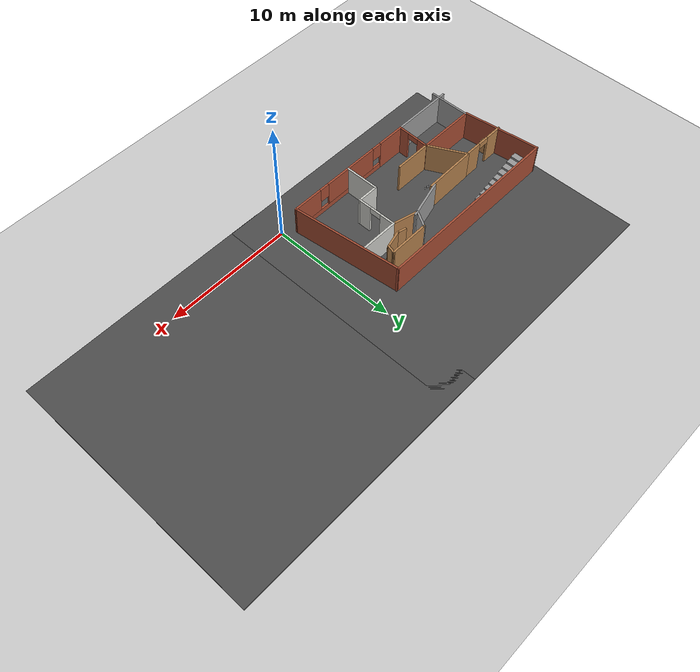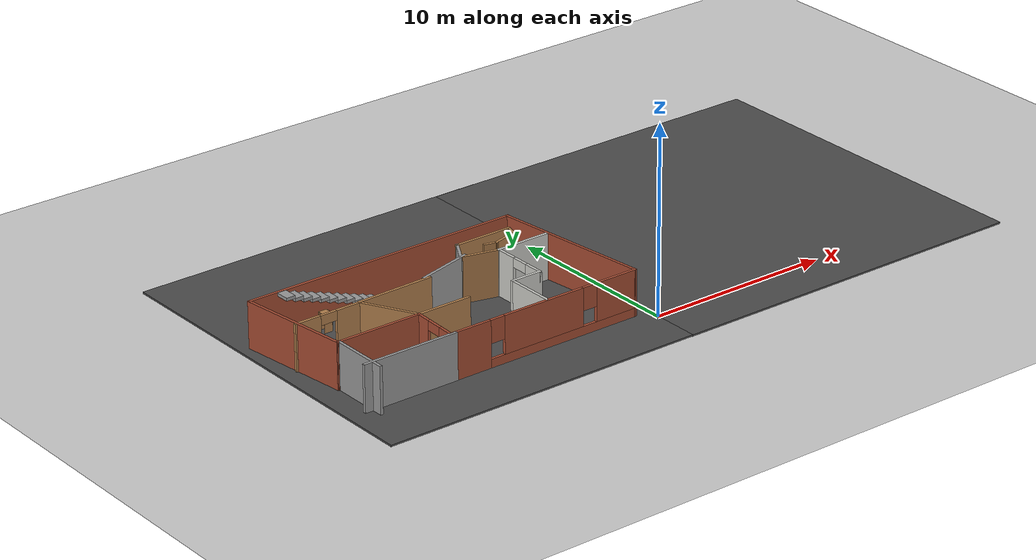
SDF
<sdf version="1.7">
 <world name="default">
  <model name="ground_plane">
   <static>1</static>
   <link name="link">
    <collision name="collision">
     <geometry><plane><normal>0 0 1</normal><size>100 100</size></plane></geometry>
     <surface><friction><ode><mu>100</mu><mu2>50</mu2></ode></friction></surface>
    </collision>
    <visual name="visual">
     <cast_shadows>0</cast_shadows>
     <geometry><plane><normal>0 0 1</normal><size>100 100</size></plane></geometry>
     <material>
      <script><uri>file://media/materials/scripts/gazebo.material</uri><name>Gazebo/Grey</name></script>
     </material>
    </visual>
   </link>
  </model>
  <model name="asphalt_plane">
   <static>1</static>
   <link name="link">
    <collision name="collision"><geometry><box><size>20 20 0.1</size></box></geometry></collision>
    <visual name="visual">
     <cast_shadows>0</cast_shadows>
     <geometry><box><size>20 20 0.1</size></box></geometry>
     <material>
      <script>
       <uri>model://asphalt_plane/materials/scripts</uri>
       <uri>model://asphalt_plane/materials/textures</uri>
       <name>vrc/asphalt</name>
      </script>
     </material>
    </visual>
   </link>
   <pose>9.99412 7.45899 0 0 -0 0</pose>
  </model>
  <model name="asphalt_plane_clone">
   <static>1</static>
   <link name="link">
    <collision name="collision"><geometry><box><size>20 20 0.1</size></box></geometry></collision>
    <visual name="visual">
     <cast_shadows>0</cast_shadows>
     <geometry><box><size>20 20 0.1</size></box></geometry>
     <material>
      <script>
       <uri>model://asphalt_plane/materials/scripts</uri>
       <uri>model://asphalt_plane/materials/textures</uri>
       <name>vrc/asphalt</name>
      </script>
     </material>
    </visual>
   </link>
   <pose>-7.54692 7.47993 0 0 -0 0</pose>
  </model>
  <model name="wonky_house">
   <pose>-8.51081 4.66291 0 0 -0 0</pose>
   <link name="Stairs_0">
    <visual name="Stairs_0_Visual_0">
     <pose>0.105992 4.11829 0.083333 0 -0 -1.5708</pose>
     <geometry><box><size>0.71857 0.484275 0.166667</size></box></geometry>
     <material>
      <script><uri>file://media/materials/scripts/gazebo.material</uri><name>Gazebo/Grey</name></script>
      <ambient>1 1 1 1</ambient>
     </material>
     <meta><layer>0</layer></meta>
    </visual>
    <collision name="Stairs_0_Collision_0">
     <geometry><box><size>0.71857 0.484275 0.166667</size></box></geometry>
     <pose>0.105992 4.11829 0.083333 0 -0 -1.5708</pose>
    </collision>
    <visual name="Stairs_0_Visual_1">
     <pose>-0.378284 4.11828 0.25 0 -0 -1.5708</pose>
     <geometry><box><size>0.71857 0.484275 0.166667</size></box></geometry>
     <material>
      <script><uri>file://media/materials/scripts/gazebo.material</uri><name>Gazebo/Grey</name></script>
      <ambient>1 1 1 1</ambient>
     </material>
     <meta><layer>0</layer></meta>
    </visual>
    <collision name="Stairs_0_Collision_1">
     <geometry><box><size>0.71857 0.484275 0.166667</size></box></geometry>
     <pose>-0.378284 4.11828 0.25 0 -0 -1.5708</pose>
    </collision>
    <visual name="Stairs_0_Visual_2">
     <pose>-0.862558 4.11828 0.416667 0 -0 -1.5708</pose>
     <geometry><box><size>0.71857 0.484275 0.166667</size></box></geometry>
     <material>
      <script><uri>file://media/materials/scripts/gazebo.material</uri><name>Gazebo/Grey</name></script>
      <ambient>1 1 1 1</ambient>
     </material>
     <meta><layer>0</layer></meta>
    </visual>
    <collision name="Stairs_0_Collision_2">
     <geometry><box><size>0.71857 0.484275 0.166667</size></box></geometry>
     <pose>-0.862558 4.11828 0.416667 0 -0 -1.5708</pose>
    </collision>
    <visual name="Stairs_0_Visual_3">
     <pose>-1.34683 4.11829 0.583333 0 -0 -1.5708</pose>
     <geometry><box><size>0.71857 0.484275 0.166667</size></box></geometry>
     <material>
      <script><uri>file://media/materials/scripts/gazebo.material</uri><name>Gazebo/Grey</name></script>
      <ambient>1 1 1 1</ambient>
     </material>
     <meta><layer>0</layer></meta>
    </visual>
    <collision name="Stairs_0_Collision_3">
     <geometry><box><size>0.71857 0.484275 0.166667</size></box></geometry>
     <pose>-1.34683 4.11829 0.583333 0 -0 -1.5708</pose>
    </collision>
    <visual name="Stairs_0_Visual_4">
     <pose>-1.83111 4.11829 0.75 0 -0 -1.5708</pose>
     <geometry><box><size>0.71857 0.484275 0.166667</size></box></geometry>
     <material>
      <script><uri>file://media/materials/scripts/gazebo.material</uri><name>Gazebo/Grey</name></script>
      <ambient>1 1 1 1</ambient>
     </material>
     <meta><layer>0</layer></meta>
    </visual>
    <collision name="Stairs_0_Collision_4">
     <geometry><box><size>0.71857 0.484275 0.166667</size></box></geometry>
     <pose>-1.83111 4.11829 0.75 0 -0 -1.5708</pose>
    </collision>
    <visual name="Stairs_0_Visual_5">
     <pose>-2.31538 4.11829 0.916667 0 -0 -1.5708</pose>
     <geometry><box><size>0.71857 0.484275 0.166667</size></box></geometry>
     <material>
      <script><uri>file://media/materials/scripts/gazebo.material</uri><name>Gazebo/Grey</name></script>
      <ambient>1 1 1 1</ambient>
     </material>
     <meta><layer>0</layer></meta>
    </visual>
    <collision name="Stairs_0_Collision_5">
     <geometry><box><size>0.71857 0.484275 0.166667</size></box></geometry>
     <pose>-2.31538 4.11829 0.916667 0 -0 -1.5708</pose>
    </collision>
    <visual name="Stairs_0_Visual_6">
     <pose>-2.79966 4.11829 1.08333 0 -0 -1.5708</pose>
     <geometry><box><size>0.71857 0.484275 0.166667</size></box></geometry>
     <material>
      <script><uri>file://media/materials/scripts/gazebo.material</uri><name>Gazebo/Grey</name></script>
      <ambient>1 1 1 1</ambient>
     </material>
     <meta><layer>0</layer></meta>
    </visual>
    <collision name="Stairs_0_Collision_6">
     <geometry><box><size>0.71857 0.484275 0.166667</size></box></geometry>
     <pose>-2.79966 4.11829 1.08333 0 -0 -1.5708</pose>
    </collision>
    <visual name="Stairs_0_Visual_7">
     <pose>-3.28394 4.11829 1.25 0 -0 -1.5708</pose>
     <geometry><box><size>0.71857 0.484275 0.166667</size></box></geometry>
     <material>
      <script><uri>file://media/materials/scripts/gazebo.material</uri><name>Gazebo/Grey</name></script>
      <ambient>1 1 1 1</ambient>
     </material>
     <meta><layer>0</layer></meta>
    </visual>
    <collision name="Stairs_0_Collision_7">
     <geometry><box><size>0.71857 0.484275 0.166667</size></box></geometry>
     <pose>-3.28394 4.11829 1.25 0 -0 -1.5708</pose>
    </collision>
    <visual name="Stairs_0_Visual_8">
     <pose>-3.76821 4.11829 1.41667 0 -0 -1.5708</pose>
     <geometry><box><size>0.71857 0.484275 0.166667</size></box></geometry>
     <material>
      <script><uri>file://media/materials/scripts/gazebo.material</uri><name>Gazebo/Grey</name></script>
      <ambient>1 1 1 1</ambient>
     </material>
     <meta><layer>0</layer></meta>
    </visual>
    <collision name="Stairs_0_Collision_8">
     <geometry><box><size>0.71857 0.484275 0.166667</size></box></geometry>
     <pose>-3.76821 4.11829 1.41667 0 -0 -1.5708</pose>
    </collision>
    <visual name="Stairs_0_Visual_9">
     <pose>-4.25249 4.11829 1.58333 0 -0 -1.5708</pose>
     <geometry><box><size>0.71857 0.484275 0.166667</size></box></geometry>
     <material>
      <script><uri>file://media/materials/scripts/gazebo.material</uri><name>Gazebo/Grey</name></script>
      <ambient>1 1 1 1</ambient>
     </material>
     <meta><layer>0</layer></meta>
    </visual>
    <collision name="Stairs_0_Collision_9">
     <geometry><box><size>0.71857 0.484275 0.166667</size></box></geometry>
     <pose>-4.25249 4.11829 1.58333 0 -0 -1.5708</pose>
    </collision>
    <visual name="Stairs_0_Visual_10">
     <pose>-4.73676 4.11829 1.75 0 -0 -1.5708</pose>
     <geometry><box><size>0.71857 0.484275 0.166667</size></box></geometry>
     <material>
      <script><uri>file://media/materials/scripts/gazebo.material</uri><name>Gazebo/Grey</name></script>
      <ambient>1 1 1 1</ambient>
     </material>
     <meta><layer>0</layer></meta>
    </visual>
    <collision name="Stairs_0_Collision_10">
     <geometry><box><size>0.71857 0.484275 0.166667</size></box></geometry>
     <pose>-4.73676 4.11829 1.75 0 -0 -1.5708</pose>
    </collision>
    <visual name="Stairs_0_Visual_11">
     <pose>-5.22104 4.11829 1.91667 0 -0 -1.5708</pose>
     <geometry><box><size>0.71857 0.484275 0.166667</size></box></geometry>
     <material>
      <script><uri>file://media/materials/scripts/gazebo.material</uri><name>Gazebo/Grey</name></script>
      <ambient>1 1 1 1</ambient>
     </material>
     <meta><layer>0</layer></meta>
    </visual>
    <collision name="Stairs_0_Collision_11">
     <geometry><box><size>0.71857 0.484275 0.166667</size></box></geometry>
     <pose>-5.22104 4.11829 1.91667 0 -0 -1.5708</pose>
    </collision>
    <visual name="Stairs_0_Visual_12">
     <pose>-5.70531 4.11829 2.08333 0 -0 -1.5708</pose>
     <geometry><box><size>0.71857 0.484275 0.166667</size></box></geometry>
     <material>
      <script><uri>file://media/materials/scripts/gazebo.material</uri><name>Gazebo/Grey</name></script>
      <ambient>1 1 1 1</ambient>
     </material>
     <meta><layer>0</layer></meta>
    </visual>
    <collision name="Stairs_0_Collision_12">
     <geometry><box><size>0.71857 0.484275 0.166667</size></box></geometry>
     <pose>-5.70531 4.11829 2.08333 0 -0 -1.5708</pose>
    </collision>
    <visual name="Stairs_0_Visual_13">
     <pose>-6.18959 4.11829 2.25 0 -0 -1.5708</pose>
     <geometry><box><size>0.71857 0.484275 0.166667</size></box></geometry>
     <material>
      <script><uri>file://media/materials/scripts/gazebo.material</uri><name>Gazebo/Grey</name></script>
      <ambient>1 1 1 1</ambient>
     </material>
     <meta><layer>0</layer></meta>
    </visual>
    <collision name="Stairs_0_Collision_13">
     <geometry><box><size>0.71857 0.484275 0.166667</size></box></geometry>
     <pose>-6.18959 4.11829 2.25 0 -0 -1.5708</pose>
    </collision>
    <visual name="Stairs_0_Visual_14">
     <pose>-6.67386 4.11829 2.41667 0 -0 -1.5708</pose>
     <geometry><box><size>0.71857 0.484275 0.166667</size></box></geometry>
     <material>
      <script><uri>file://media/materials/scripts/gazebo.material</uri><name>Gazebo/Grey</name></script>
      <ambient>1 1 1 1</ambient>
     </material>
     <meta><layer>0</layer></meta>
    </visual>
    <collision name="Stairs_0_Collision_14">
     <geometry><box><size>0.71857 0.484275 0.166667</size></box></geometry>
     <pose>-6.67386 4.11829 2.41667 0 -0 -1.5708</pose>
    </collision>
   </link>
   <link name="Wall_16">
    <collision name="Wall_16_Collision">
     <geometry><box><size>15.25 0.15 2.5</size></box></geometry>
     <pose>0 0 1.25 0 -0 0</pose>
    </collision>
    <visual name="Wall_16_Visual">
     <pose>0 0 1.25 0 -0 0</pose>
     <geometry><box><size>15.25 0.15 2.5</size></box></geometry>
     <material>
      <script><uri>file://media/materials/scripts/gazebo.material</uri><name>Gazebo/Bricks</name></script>
      <ambient>1 1 1 1</ambient>
     </material>
     <meta><layer>0</layer></meta>
    </visual>
    <pose>-0.850794 4.57949 0 0 -0 3.14159</pose>
   </link>
   <link name="Wall_17">
    <collision name="Wall_17_Collision">
     <geometry><box><size>6.16543 0.15 2.5</size></box></geometry>
     <pose>0 0 1.25 0 -0 0</pose>
    </collision>
    <visual name="Wall_17_Visual">
     <pose>0 0 1.25 0 -0 0</pose>
     <geometry><box><size>6.16543 0.15 2.5</size></box></geometry>
     <material>
      <script><uri>file://media/materials/scripts/gazebo.material</uri><name>Gazebo/Bricks</name></script>
      <ambient>1 1 1 1</ambient>
     </material>
     <meta><layer>0</layer></meta>
    </visual>
    <pose>-8.06829 1.59329 0 0 -0 -1.45112</pose>
   </link>
   <link name="Wall_18">
    <collision name="Wall_18_Collision">
     <geometry><box><size>4.75 0.15 2.5</size></box></geometry>
     <pose>0 0 1.25 0 -0 0</pose>
    </collision>
    <visual name="Wall_18_Visual">
     <pose>0 0 1.25 0 -0 0</pose>
     <geometry><box><size>4.75 0.15 2.5</size></box></geometry>
     <material>
      <script><uri>file://media/materials/scripts/gazebo.material</uri><name>Gazebo/Bricks</name></script>
      <ambient>1 1 1 1</ambient>
     </material>
     <meta><layer>0</layer></meta>
    </visual>
    <pose>-5.40919 -1.39291 0 0 -0 0</pose>
   </link>
   <link name="Wall_21">
    <collision name="Wall_21_Collision">
     <geometry><box><size>3.2014 0.15 2.5</size></box></geometry>
     <pose>0 0 1.25 0 -0 0</pose>
    </collision>
    <visual name="Wall_21_Visual">
     <pose>0 0 1.25 0 -0 0</pose>
     <geometry><box><size>3.2014 0.15 2.5</size></box></geometry>
     <material>
      <script><uri>file://media/materials/scripts/gazebo.material</uri><name>Gazebo/Wood</name></script>
      <ambient>1 1 1 1</ambient>
     </material>
     <meta><layer>0</layer></meta>
    </visual>
    <pose>-3.81409 -0.039815 0 0 -0 2.05107</pose>
   </link>
   <link name="Wall_22">
    <pose>-6.319 1.31328 0 0 -0 3.14159</pose>
    <visual name="Wall_22_Visual_0">
     <pose>-1.16791 0 1.25 0 -0 0</pose>
     <geometry><box><size>1.41417 0.15 2.5</size></box></geometry>
     <material>
      <script><uri>file://media/materials/scripts/gazebo.material</uri><name>Gazebo/Wood</name></script>
      <ambient>1 1 1 1</ambient>
     </material>
     <meta><layer>0</layer></meta>
    </visual>
    <collision name="Wall_22_Collision_0">
     <geometry><box><size>1.41417 0.15 2.5</size></box></geometry>
     <pose>-1.16791 0 1.25 0 -0 0</pose>
    </collision>
    <visual name="Wall_22_Visual_1">
     <pose>1.15709 0 1.25 0 -0 0</pose>
     <geometry><box><size>1.43583 0.15 2.5</size></box></geometry>
     <material>
      <script><uri>file://media/materials/scripts/gazebo.material</uri><name>Gazebo/Wood</name></script>
      <ambient>1 1 1 1</ambient>
     </material>
     <meta><layer>0</layer></meta>
    </visual>
    <collision name="Wall_22_Collision_1">
     <geometry><box><size>1.43583 0.15 2.5</size></box></geometry>
     <pose>1.15709 0 1.25 0 -0 0</pose>
    </collision>
    <visual name="Wall_22_Visual_2">
     <pose>-0.010826 0 2.25 0 -0 0</pose>
     <geometry><box><size>0.9 0.15 0.5</size></box></geometry>
     <material>
      <script><uri>file://media/materials/scripts/gazebo.material</uri><name>Gazebo/Wood</name></script>
      <ambient>1 1 1 1</ambient>
     </material>
     <meta><layer>0</layer></meta>
    </visual>
    <collision name="Wall_22_Collision_2">
     <geometry><box><size>0.9 0.15 0.5</size></box></geometry>
     <pose>-0.010826 0 2.25 0 -0 0</pose>
    </collision>
   </link>
   <link name="Wall_24">
    <pose>-3.15919 -2.66791 0 0 -0 1.5316</pose>
    <visual name="Wall_24_Visual_0">
     <pose>-0.891327 0 1.25 0 -0 0</pose>
     <geometry><box><size>0.919306 0.15 2.5</size></box></geometry>
     <material>
      <script><uri>file://media/materials/scripts/gazebo.material</uri><name>Gazebo/Bricks</name></script>
      <ambient>1 1 1 1</ambient>
     </material>
     <meta><layer>0</layer></meta>
    </visual>
    <collision name="Wall_24_Collision_0">
     <geometry><box><size>0.919306 0.15 2.5</size></box></geometry>
     <pose>-0.891327 0 1.25 0 -0 0</pose>
    </collision>
    <visual name="Wall_24_Visual_1">
     <pose>0.909653 0 1.25 0 -0 0</pose>
     <geometry><box><size>0.882654 0.15 2.5</size></box></geometry>
     <material>
      <script><uri>file://media/materials/scripts/gazebo.material</uri><name>Gazebo/Bricks</name></script>
      <ambient>1 1 1 1</ambient>
     </material>
     <meta><layer>0</layer></meta>
    </visual>
    <collision name="Wall_24_Collision_1">
     <geometry><box><size>0.882654 0.15 2.5</size></box></geometry>
     <pose>0.909653 0 1.25 0 -0 0</pose>
    </collision>
    <visual name="Wall_24_Visual_2">
     <pose>0.018326 0 2.25 0 -0 0</pose>
     <geometry><box><size>0.9 0.15 0.5</size></box></geometry>
     <material>
      <script><uri>file://media/materials/scripts/gazebo.material</uri><name>Gazebo/Bricks</name></script>
      <ambient>1 1 1 1</ambient>
     </material>
     <meta><layer>0</layer></meta>
    </visual>
    <collision name="Wall_24_Collision_2">
     <geometry><box><size>0.9 0.15 0.5</size></box></geometry>
     <pose>0.018326 0 2.25 0 -0 0</pose>
    </collision>
   </link>
   <link name="Wall_27">
    <collision name="Wall_27_Collision">
     <geometry><box><size>8.72722 0.15 2.5</size></box></geometry>
     <pose>0 0 1.25 0 -0 0</pose>
    </collision>
    <visual name="Wall_27_Visual">
     <pose>0 0 1.25 0 -0 0</pose>
     <geometry><box><size>8.72722 0.15 2.5</size></box></geometry>
     <material>
      <script><uri>file://media/materials/scripts/gazebo.material</uri><name>Gazebo/Bricks</name></script>
      <ambient>1 1 1 1</ambient>
     </material>
     <meta><layer>0</layer></meta>
    </visual>
    <pose>7.15671 0.318291 0 0 -0 1.68392</pose>
   </link>
   <link name="Wall_29">
    <collision name="Wall_29_Collision">
     <geometry><box><size>3 0.15 2.5</size></box></geometry>
     <pose>0 0 1.25 0 -0 0</pose>
    </collision>
    <visual name="Wall_29_Visual">
     <pose>0 0 1.25 0 -0 0</pose>
     <geometry><box><size>3 0.15 2.5</size></box></geometry>
     <material>
      <script><uri>file://media/materials/scripts/gazebo.material</uri><name>Gazebo/CeilingTiled</name></script>
      <ambient>1 1 1 1</ambient>
     </material>
     <meta><layer>0</layer></meta>
    </visual>
    <pose>5.42135 1.78856 0 0 -0 3.14159</pose>
   </link>
   <link name="Wall_30">
    <pose>4.02295 0.238559 0 0 -0 -1.5708</pose>
    <visual name="Wall_30_Visual_0">
     <pose>-1.00119 0 1.25 0 -0 0</pose>
     <geometry><box><size>1.24761 0.15 2.5</size></box></geometry>
     <material>
      <script><uri>file://media/materials/scripts/gazebo.material</uri><name>Gazebo/CeilingTiled</name></script>
      <ambient>1 1 1 1</ambient>
     </material>
     <meta><layer>0</layer></meta>
    </visual>
    <collision name="Wall_30_Collision_0">
     <geometry><box><size>1.24761 0.15 2.5</size></box></geometry>
     <pose>-1.00119 0 1.25 0 -0 0</pose>
    </collision>
    <visual name="Wall_30_Visual_1">
     <pose>1.07381 0 1.25 0 -0 0</pose>
     <geometry><box><size>1.10239 0.15 2.5</size></box></geometry>
     <material>
      <script><uri>file://media/materials/scripts/gazebo.material</uri><name>Gazebo/CeilingTiled</name></script>
      <ambient>1 1 1 1</ambient>
     </material>
     <meta><layer>0</layer></meta>
    </visual>
    <collision name="Wall_30_Collision_1">
     <geometry><box><size>1.10239 0.15 2.5</size></box></geometry>
     <pose>1.07381 0 1.25 0 -0 0</pose>
    </collision>
    <visual name="Wall_30_Visual_2">
     <pose>0.072612 0 2.25 0 -0 0</pose>
     <geometry><box><size>0.9 0.15 0.5</size></box></geometry>
     <material>
      <script><uri>file://media/materials/scripts/gazebo.material</uri><name>Gazebo/CeilingTiled</name></script>
      <ambient>1 1 1 1</ambient>
     </material>
     <meta><layer>0</layer></meta>
    </visual>
    <collision name="Wall_30_Collision_2">
     <geometry><box><size>0.9 0.15 0.5</size></box></geometry>
     <pose>0.072612 0 2.25 0 -0 0</pose>
    </collision>
   </link>
   <link name="Wall_32">
    <collision name="Wall_32_Collision">
     <geometry><box><size>2.11559 0.15 2.5</size></box></geometry>
     <pose>0 0 1.25 0 -0 0</pose>
    </collision>
    <visual name="Wall_32_Visual">
     <pose>0 0 1.25 0 -0 0</pose>
     <geometry><box><size>2.11559 0.15 2.5</size></box></geometry>
     <material>
      <script><uri>file://media/materials/scripts/gazebo.material</uri><name>Gazebo/Wood</name></script>
      <ambient>1 1 1 1</ambient>
     </material>
     <meta><layer>0</layer></meta>
    </visual>
    <pose>3.04309 2.02766 0 0 -0 2.89584</pose>
   </link>
   <link name="Wall_34">
    <collision name="Wall_34_Collision">
     <geometry><box><size>4.28757 0.15 2.5</size></box></geometry>
     <pose>0 0 1.25 0 -0 0</pose>
    </collision>
    <visual name="Wall_34_Visual">
     <pose>0 0 1.25 0 -0 0</pose>
     <geometry><box><size>4.28757 0.15 2.5</size></box></geometry>
     <material>
      <script><uri>file://media/materials/scripts/gazebo.material</uri><name>Gazebo/Wood</name></script>
      <ambient>1 1 1 1</ambient>
     </material>
     <meta><layer>0</layer></meta>
    </visual>
    <pose>-2.45075 1.38707 0 0 -0 -3.11878</pose>
   </link>
   <link name="Wall_36">
    <collision name="Wall_36_Collision">
     <geometry><box><size>3 0.15 2.5</size></box></geometry>
     <pose>0 0 1.25 0 -0 0</pose>
    </collision>
    <visual name="Wall_36_Visual">
     <pose>0 0 1.25 0 -0 0</pose>
     <geometry><box><size>3 0.15 2.5</size></box></geometry>
     <material>
      <script><uri>file://media/materials/scripts/gazebo.material</uri><name>Gazebo/Wood</name></script>
      <ambient>1 1 1 1</ambient>
     </material>
     <meta><layer>0</layer></meta>
    </visual>
    <pose>-1.68419 -1.39291 0 0 -0 0</pose>
   </link>
   <link name="Wall_38">
    <collision name="Wall_38_Collision">
     <geometry><box><size>1.75 0.15 2.5</size></box></geometry>
     <pose>0 0 1.25 0 -0 0</pose>
    </collision>
    <visual name="Wall_38_Visual">
     <pose>0 0 1.25 0 -0 0</pose>
     <geometry><box><size>1.75 0.15 2.5</size></box></geometry>
     <material>
      <script><uri>file://media/materials/scripts/gazebo.material</uri><name>Gazebo/CeilingTiled</name></script>
      <ambient>1 1 1 1</ambient>
     </material>
     <meta><layer>0</layer></meta>
    </visual>
    <pose>3.22295 -1.31144 0 0 -0 3.14159</pose>
   </link>
   <link name="Wall_39">
    <collision name="Wall_39_Collision">
     <geometry><box><size>2.75 0.15 2.5</size></box></geometry>
     <pose>0 0 1.25 0 -0 0</pose>
    </collision>
    <visual name="Wall_39_Visual">
     <pose>0 0 1.25 0 -0 0</pose>
     <geometry><box><size>2.75 0.15 2.5</size></box></geometry>
     <material>
      <script><uri>file://media/materials/scripts/gazebo.material</uri><name>Gazebo/CeilingTiled</name></script>
      <ambient>1 1 1 1</ambient>
     </material>
     <meta><layer>0</layer></meta>
    </visual>
    <pose>2.42295 -2.61144 0 0 -0 -1.5708</pose>
   </link>
   <link name="Wall_41">
    <collision name="Wall_41_Collision">
     <geometry><box><size>1.5 0.15 2.5</size></box></geometry>
     <pose>0 0 1.25 0 -0 0</pose>
    </collision>
    <visual name="Wall_41_Visual">
     <pose>0 0 1.25 0 -0 0</pose>
     <geometry><box><size>1.5 0.15 2.5</size></box></geometry>
     <material>
      <script><uri>file://media/materials/scripts/gazebo.material</uri><name>Gazebo/Grey</name></script>
      <ambient>1 1 1 1</ambient>
     </material>
     <meta><layer>0</layer></meta>
    </visual>
    <pose>2.42732 2.85133 0 0 -0 1.0472</pose>
   </link>
   <link name="Wall_42">
    <collision name="Wall_42_Collision">
     <geometry><box><size>3.25 0.15 2.5</size></box></geometry>
     <pose>0 0 1.25 0 -0 0</pose>
    </collision>
    <visual name="Wall_42_Visual">
     <pose>0 0 1.25 0 -0 0</pose>
     <geometry><box><size>3.25 0.15 2.5</size></box></geometry>
     <material>
      <script><uri>file://media/materials/scripts/gazebo.material</uri><name>Gazebo/Wood</name></script>
      <ambient>1 1 1 1</ambient>
     </material>
     <meta><layer>0</layer></meta>
    </visual>
    <pose>4.31482 3.43589 0 0 -0 0</pose>
   </link>
   <link name="Wall_43">
    <collision name="Wall_43_Collision">
     <geometry><box><size>0.75 0.15 2.5</size></box></geometry>
     <pose>0 0 1.25 0 -0 0</pose>
    </collision>
    <visual name="Wall_43_Visual">
     <pose>0 0 1.25 0 -0 0</pose>
     <geometry><box><size>0.75 0.15 2.5</size></box></geometry>
     <material>
      <script><uri>file://media/materials/scripts/gazebo.material</uri><name>Gazebo/Wood</name></script>
      <ambient>1 1 1 1</ambient>
     </material>
     <meta><layer>0</layer></meta>
    </visual>
    <pose>5.78718 3.14612 0 0 -0 -1.8326</pose>
   </link>
   <link name="Wall_44">
    <collision name="Wall_44_Collision">
     <geometry><box><size>1.5 0.15 2.5</size></box></geometry>
     <pose>0 0 1.25 0 -0 0</pose>
    </collision>
    <visual name="Wall_44_Visual">
     <pose>0 0 1.25 0 -0 0</pose>
     <geometry><box><size>1.5 0.15 2.5</size></box></geometry>
     <material>
      <script><uri>file://media/materials/scripts/gazebo.material</uri><name>Gazebo/Wood</name></script>
      <ambient>1 1 1 1</ambient>
     </material>
     <meta><layer>0</layer></meta>
    </visual>
    <pose>5.05753 2.68163 0 0 -0 -2.87979</pose>
   </link>
   <link name="Wall_45">
    <collision name="Wall_45_Collision">
     <geometry><box><size>0.75 0.15 2.5</size></box></geometry>
     <pose>0 0 1.25 0 -0 0</pose>
    </collision>
    <visual name="Wall_45_Visual">
     <pose>0 0 1.25 0 -0 0</pose>
     <geometry><box><size>0.75 0.15 2.5</size></box></geometry>
     <material>
      <script><uri>file://media/materials/scripts/gazebo.material</uri><name>Gazebo/Wood</name></script>
      <ambient>1 1 1 1</ambient>
     </material>
     <meta><layer>0</layer></meta>
    </visual>
    <pose>4.11575 2.58458 0 0 -0 2.87979</pose>
   </link>
   <link name="Wall_8">
    <pose>2.21581 -3.94291 0 0 -0 0</pose>
    <visual name="Wall_8_Visual_0">
     <pose>-4.33496 0 1.25 0 -0 0</pose>
     <geometry><box><size>2.33007 0.15 2.5</size></box></geometry>
     <material>
      <script><uri>file://media/materials/scripts/gazebo.material</uri><name>Gazebo/Bricks</name></script>
      <ambient>1 1 1 1</ambient>
     </material>
     <meta><layer>0</layer></meta>
    </visual>
    <collision name="Wall_8_Collision_0">
     <geometry><box><size>2.33007 0.15 2.5</size></box></geometry>
     <pose>-4.33496 0 1.25 0 -0 0</pose>
    </collision>
    <visual name="Wall_8_Visual_1">
     <pose>1.16504 0 0.25 0 -0 0</pose>
     <geometry><box><size>8.66993 0.15 0.5</size></box></geometry>
     <material>
      <script><uri>file://media/materials/scripts/gazebo.material</uri><name>Gazebo/Bricks</name></script>
      <ambient>1 1 1 1</ambient>
     </material>
     <meta><layer>0</layer></meta>
    </visual>
    <collision name="Wall_8_Collision_1">
     <geometry><box><size>8.66993 0.15 0.5</size></box></geometry>
     <pose>1.16504 0 0.25 0 -0 0</pose>
    </collision>
    <visual name="Wall_8_Visual_2">
     <pose>-0.056709 0 1.5 0 -0 0</pose>
     <geometry><box><size>4.62644 0.15 2</size></box></geometry>
     <material>
      <script><uri>file://media/materials/scripts/gazebo.material</uri><name>Gazebo/Bricks</name></script>
      <ambient>1 1 1 1</ambient>
     </material>
     <meta><layer>0</layer></meta>
    </visual>
    <collision name="Wall_8_Collision_2">
     <geometry><box><size>4.62644 0.15 2</size></box></geometry>
     <pose>-0.056709 0 1.5 0 -0 0</pose>
    </collision>
    <visual name="Wall_8_Visual_3">
     <pose>4.27826 0 1.5 0 -0 0</pose>
     <geometry><box><size>2.44349 0.15 2</size></box></geometry>
     <material>
      <script><uri>file://media/materials/scripts/gazebo.material</uri><name>Gazebo/Bricks</name></script>
      <ambient>1 1 1 1</ambient>
     </material>
     <meta><layer>0</layer></meta>
    </visual>
    <collision name="Wall_8_Collision_3">
     <geometry><box><size>2.44349 0.15 2</size></box></geometry>
     <pose>4.27826 0 1.5 0 -0 0</pose>
    </collision>
    <visual name="Wall_8_Visual_4">
     <pose>-2.76993 0 1.9 0 -0 0</pose>
     <geometry><box><size>0.8 0.15 1.2</size></box></geometry>
     <material>
      <script><uri>file://media/materials/scripts/gazebo.material</uri><name>Gazebo/Bricks</name></script>
      <ambient>1 1 1 1</ambient>
     </material>
     <meta><layer>0</layer></meta>
    </visual>
    <collision name="Wall_8_Collision_4">
     <geometry><box><size>0.8 0.15 1.2</size></box></geometry>
     <pose>-2.76993 0 1.9 0 -0 0</pose>
    </collision>
    <visual name="Wall_8_Visual_5">
     <pose>2.65651 0 1.9 0 -0 0</pose>
     <geometry><box><size>0.8 0.15 1.2</size></box></geometry>
     <material>
      <script><uri>file://media/materials/scripts/gazebo.material</uri><name>Gazebo/Bricks</name></script>
      <ambient>1 1 1 1</ambient>
     </material>
     <meta><layer>0</layer></meta>
    </visual>
    <collision name="Wall_8_Collision_5">
     <geometry><box><size>0.8 0.15 1.2</size></box></geometry>
     <pose>2.65651 0 1.9 0 -0 0</pose>
    </collision>
   </link>
   <static>1</static>
  </model>
  <model name="beer">
   <link name="link">
    <pose>0 0 0.115 0 -0 0</pose>
    <inertial>
     <mass>0.39</mass>
     <inertia><ixx>0.00058</ixx><ixy>0</ixy><ixz>0</ixz><iyy>0.00058</iyy><iyz>0</iyz><izz>0.00019</izz></inertia>
    </inertial>
    <collision name="collision">
     <geometry><cylinder><radius>0.055</radius><length>0.23</length></cylinder></geometry>
    </collision>
    <visual name="visual">
     <geometry><cylinder><radius>0.055</radius><length>0.23</length></cylinder></geometry>
     <material>
      <script>
       <uri>model://beer/materials/scripts</uri>
       <uri>model://beer/materials/textures</uri>
       <name>Beer/Diffuse</name>
      </script>
     </material>
    </visual>
   </link>
   <pose>-9.60015 5.04056 0.77499 -1e-06 2.6e-05 -0.006756</pose>
  </model>
  <model name="beer_0">
   <link name="link">
    <pose>0 0 0.115 0 -0 0</pose>
    <inertial>
     <mass>0.39</mass>
     <inertia><ixx>0.00058</ixx><ixy>0</ixy><ixz>0</ixz><iyy>0.00058</iyy><iyz>0</iyz><izz>0.00019</izz></inertia>
    </inertial>
    <collision name="collision">
     <geometry><cylinder><radius>0.055</radius><length>0.23</length></cylinder></geometry>
    </collision>
    <visual name="visual">
     <geometry><cylinder><radius>0.055</radius><length>0.23</length></cylinder></geometry>
     <material>
      <script>
       <uri>model://beer/materials/scripts</uri>
       <uri>model://beer/materials/textures</uri>
       <name>Beer/Diffuse</name>
      </script>
     </material>
    </visual>
   </link>
   <pose>-9.84611 5.07059 0.774992 -5e-06 -2.5e-05 0.002473</pose>
  </model>
  <model name="cabinet">
   <static>1</static>
   <link name="cabinet_bottom_plate">
    <inertial>
     <pose>0 0 -1 0 -0 0</pose>
     <inertia><ixx>2.05</ixx><ixy>0</ixy><ixz>0</ixz><iyy>2.05</iyy><iyz>0</iyz><izz>2.05</izz></inertia>
     <mass>25</mass>
    </inertial>
    <collision name="cabinet_bottom_plate_geom">
     <pose>0 0 0.01 0 -0 0</pose>
     <geometry><box><size>0.45 0.45 0.02</size></box></geometry>
    </collision>
    <visual name="cabinet_bottom_plate_geom_visual">
     <pose>0 0 0.01 0 -0 0</pose>
     <geometry><box><size>0.45 0.45 0.02</size></box></geometry>
     <material>
      <script><uri>file://media/materials/scripts/gazebo.material</uri><name>Gazebo/Wood</name></script>
     </material>
    </visual>
    <collision name="cabinet_bottom_plate_geom_cabinet_back_plate">
     <pose>0.235 0 0.51 0 -0 0</pose>
     <geometry><box><size>0.02 0.45 1.02</size></box></geometry>
    </collision>
    <visual name="cabinet_bottom_plate_geom_cabinet_back_plate_visual">
     <pose>0.235 0 0.51 0 -0 0</pose>
     <geometry><box><size>0.02 0.45 1.02</size></box></geometry>
     <material>
      <script><uri>file://media/materials/scripts/gazebo.material</uri><name>Gazebo/Wood</name></script>
     </material>
    </visual>
    <collision name="cabinet_bottom_plate_geom_cabinet_left_plate">
     <pose>0 0.235 0.51 0 -0 0</pose>
     <geometry><box><size>0.45 0.02 1.02</size></box></geometry>
    </collision>
    <visual name="cabinet_bottom_plate_geom_cabinet_left_plate_visual">
     <pose>0 0.235 0.51 0 -0 0</pose>
     <geometry><box><size>0.45 0.02 1.02</size></box></geometry>
     <material>
      <script><uri>file://media/materials/scripts/gazebo.material</uri><name>Gazebo/Wood</name></script>
     </material>
    </visual>
    <collision name="cabinet_bottom_plate_geom_cabinet_middle_plate">
     <pose>0 0 0.51 0 -0 0</pose>
     <geometry><box><size>0.45 0.45 0.02</size></box></geometry>
    </collision>
    <visual name="cabinet_bottom_plate_geom_cabinet_middle_plate_visual">
     <pose>0 0 0.51 0 -0 0</pose>
     <geometry><box><size>0.45 0.45 0.02</size></box></geometry>
     <material>
      <script><uri>file://media/materials/scripts/gazebo.material</uri><name>Gazebo/Wood</name></script>
     </material>
    </visual>
    <collision name="cabinet_bottom_plate_geom_cabinet_right_plate">
     <pose>0 -0.235 0.51 0 -0 0</pose>
     <geometry><box><size>0.45 0.02 1.02</size></box></geometry>
    </collision>
    <visual name="cabinet_bottom_plate_geom_cabinet_right_plate_visual">
     <pose>0 -0.235 0.51 0 -0 0</pose>
     <geometry><box><size>0.45 0.02 1.02</size></box></geometry>
     <material>
      <script><uri>file://media/materials/scripts/gazebo.material</uri><name>Gazebo/Wood</name></script>
     </material>
    </visual>
    <collision name="cabinet_bottom_plate_geom_cabinet_top_plate">
     <pose>0 0 1.01 0 -0 0</pose>
     <geometry><box><size>0.45 0.45 0.02</size></box></geometry>
    </collision>
    <visual name="cabinet_bottom_plate_geom_cabinet_top_plate_visual">
     <pose>0 0 1.01 0 -0 0</pose>
     <geometry><box><size>0.45 0.45 0.02</size></box></geometry>
     <material>
      <script><uri>file://media/materials/scripts/gazebo.material</uri><name>Gazebo/Wood</name></script>
     </material>
    </visual>
   </link>
   <pose>-13.1601 8.59059 0 0 -0 0</pose>
  </model>
  <model name="cabinet_0">
   <static>1</static>
   <link name="cabinet_bottom_plate">
    <inertial>
     <pose>0 0 -1 0 -0 0</pose>
     <inertia><ixx>2.05</ixx><ixy>0</ixy><ixz>0</ixz><iyy>2.05</iyy><iyz>0</iyz><izz>2.05</izz></inertia>
     <mass>25</mass>
    </inertial>
    <collision name="cabinet_bottom_plate_geom">
     <pose>0 0 0.01 0 -0 0</pose>
     <geometry><box><size>0.45 0.45 0.02</size></box></geometry>
    </collision>
    <visual name="cabinet_bottom_plate_geom_visual">
     <pose>0 0 0.01 0 -0 0</pose>
     <geometry><box><size>0.45 0.45 0.02</size></box></geometry>
     <material>
      <script><uri>file://media/materials/scripts/gazebo.material</uri><name>Gazebo/Wood</name></script>
     </material>
    </visual>
    <collision name="cabinet_bottom_plate_geom_cabinet_back_plate">
     <pose>0.235 0 0.51 0 -0 0</pose>
     <geometry><box><size>0.02 0.45 1.02</size></box></geometry>
    </collision>
    <visual name="cabinet_bottom_plate_geom_cabinet_back_plate_visual">
     <pose>0.235 0 0.51 0 -0 0</pose>
     <geometry><box><size>0.02 0.45 1.02</size></box></geometry>
     <material>
      <script><uri>file://media/materials/scripts/gazebo.material</uri><name>Gazebo/Wood</name></script>
     </material>
    </visual>
    <collision name="cabinet_bottom_plate_geom_cabinet_left_plate">
     <pose>0 0.235 0.51 0 -0 0</pose>
     <geometry><box><size>0.45 0.02 1.02</size></box></geometry>
    </collision>
    <visual name="cabinet_bottom_plate_geom_cabinet_left_plate_visual">
     <pose>0 0.235 0.51 0 -0 0</pose>
     <geometry><box><size>0.45 0.02 1.02</size></box></geometry>
     <material>
      <script><uri>file://media/materials/scripts/gazebo.material</uri><name>Gazebo/Wood</name></script>
     </material>
    </visual>
    <collision name="cabinet_bottom_plate_geom_cabinet_middle_plate">
     <pose>0 0 0.51 0 -0 0</pose>
     <geometry><box><size>0.45 0.45 0.02</size></box></geometry>
    </collision>
    <visual name="cabinet_bottom_plate_geom_cabinet_middle_plate_visual">
     <pose>0 0 0.51 0 -0 0</pose>
     <geometry><box><size>0.45 0.45 0.02</size></box></geometry>
     <material>
      <script><uri>file://media/materials/scripts/gazebo.material</uri><name>Gazebo/Wood</name></script>
     </material>
    </visual>
    <collision name="cabinet_bottom_plate_geom_cabinet_right_plate">
     <pose>0 -0.235 0.51 0 -0 0</pose>
     <geometry><box><size>0.45 0.02 1.02</size></box></geometry>
    </collision>
    <visual name="cabinet_bottom_plate_geom_cabinet_right_plate_visual">
     <pose>0 -0.235 0.51 0 -0 0</pose>
     <geometry><box><size>0.45 0.02 1.02</size></box></geometry>
     <material>
      <script><uri>file://media/materials/scripts/gazebo.material</uri><name>Gazebo/Wood</name></script>
     </material>
    </visual>
    <collision name="cabinet_bottom_plate_geom_cabinet_top_plate">
     <pose>0 0 1.01 0 -0 0</pose>
     <geometry><box><size>0.45 0.45 0.02</size></box></geometry>
    </collision>
    <visual name="cabinet_bottom_plate_geom_cabinet_top_plate_visual">
     <pose>0 0 1.01 0 -0 0</pose>
     <geometry><box><size>0.45 0.45 0.02</size></box></geometry>
     <material>
      <script><uri>file://media/materials/scripts/gazebo.material</uri><name>Gazebo/Wood</name></script>
     </material>
    </visual>
   </link>
   <pose>-16.1007 5.27311 0 0 -0 0</pose>
  </model>
  <model name="enclosing_walls">
   <pose>-8.32499 1.66552 0 0 -0 0</pose>
   <link name="Wall_2">
    <collision name="Wall_2_Collision">
     <geometry><box><size>5.25 0.15 2.5</size></box></geometry>
     <pose>0 0 1.25 0 -0 0</pose>
    </collision>
    <visual name="Wall_2_Visual">
     <pose>0 0 1.25 0 -0 0</pose>
     <geometry><box><size>5.25 0.15 2.5</size></box></geometry>
     <material>
      <script><uri>file://media/materials/scripts/gazebo.material</uri><name>Gazebo/Grey</name></script>
      <ambient>1 1 1 1</ambient>
     </material>
     <meta><layer>0</layer></meta>
    </visual>
    <pose>-5.70001 -0.957485 0 0 -0 3.14159</pose>
   </link>
   <link name="Wall_4">
    <collision name="Wall_4_Collision">
     <geometry><box><size>3.25 0.15 2.5</size></box></geometry>
     <pose>0 0 1.25 0 -0 0</pose>
    </collision>
    <visual name="Wall_4_Visual">
     <pose>0 0 1.25 0 -0 0</pose>
     <geometry><box><size>3.25 0.15 2.5</size></box></geometry>
     <material>
      <script><uri>file://media/materials/scripts/gazebo.material</uri><name>Gazebo/Grey</name></script>
      <ambient>1 1 1 1</ambient>
     </material>
     <meta><layer>0</layer></meta>
    </visual>
    <pose>-7.80752 0.040515 0 0 -0 1.5708</pose>
   </link>
   <static>1</static>
  </model>
  <model name="more_walls">
   <pose>-4.6103 3.54662 0 0 -0 0</pose>
   <link name="Wall_5">
    <collision name="Wall_5_Collision">
     <geometry><box><size>3.25 0.15 2.5</size></box></geometry>
     <pose>0 0 1.25 0 -0 0</pose>
    </collision>
    <visual name="Wall_5_Visual">
     <pose>0 0 1.25 0 -0 0</pose>
     <geometry><box><size>3.25 0.15 2.5</size></box></geometry>
     <material>
      <script><uri>file://media/materials/scripts/gazebo.material</uri><name>Gazebo/Grey</name></script>
      <ambient>1 1 1 1</ambient>
     </material>
     <meta><layer>0</layer></meta>
    </visual>
    <pose>-3.02126 3.05359 0 0 -0 -2.87979</pose>
   </link>
   <static>1</static>
  </model>
 </world>
</sdf>
